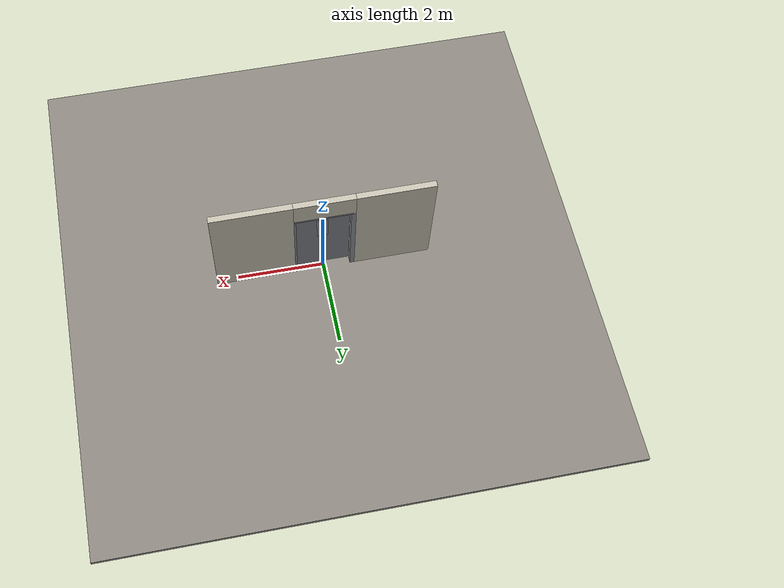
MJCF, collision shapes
<?xml version="1.0" ?>
<mujoco model="db0970_sliding_single_full">
  <compiler angle="radian" meshdir="../../hardware" texturedir="../../textures" autolimits="true" inertiafromgeom="false"/>
  <option timestep="0.002" integrator="implicitfast" cone="elliptic" impratio="10" noslip_iterations="3">
    <flag multiccd="enable"/>
  </option>
  <size memory="16M"/>
  <default>
    <geom condim="4" solref="0.005 1" solimp="0.95 0.99 0.001"/>
    <joint solreflimit="0.005 1" solimplimit="0.95 0.99 0.001"/>
    <tendon solreflimit="0.005 1"/>
    <equality solref="0.002 1"/>
  </default>
  <visual>
    <headlight ambient="0.4 0.4 0.4" diffuse="0.7 0.7 0.7" specular="0.2 0.2 0.2"/>
    <quality shadowsize="4096"/>
    <map znear="0.01" zfar="60"/>
  </visual>
  <asset>
    <mesh name="pull_1e5d69a91a" file="pull_1e5d69a91a.obj"/>
    <material name="mat_floor" rgba="0.55 0.53 0.5 1" specular="0.2" shininess="0.15" reflectance="0"/>
    <material name="mat_wall" rgba="0.78 0.76 0.7 1" specular="0.2" shininess="0.1" reflectance="0"/>
    <material name="mat_frame" rgba="0.55 0.56 0.58 1" specular="0.8" shininess="0.55" reflectance="0.4"/>
    <material name="mat_track" rgba="0.8 0.81 0.83 1" specular="0.8" shininess="0.6" reflectance="0.4"/>
    <material name="mat_leaf" rgba="0.5 0.51 0.53 1" specular="0.23" shininess="0.32" reflectance="0.02"/>
    <material name="mat_glass" rgba="0.85 0.92 0.95 0.25" specular="0.2" shininess="0.95" reflectance="0.1"/>
    <material name="mat_roller" rgba="0.65 0.66 0.68 1" specular="0.74" shininess="0.5" reflectance="0.36"/>
    <material name="mat_op_stainless" rgba="0.75 0.76 0.77 1" specular="0.8" shininess="0.65" reflectance="0.4"/>
    <material name="mat_hook" rgba="0.75 0.76 0.77 1" specular="0.8" shininess="0.65" reflectance="0.4"/>
    <material name="mat_placard" rgba="0.95 0.75 0.05 1" specular="0.2" shininess="0.5" reflectance="0"/>
    <texture name="skybox" type="skybox" builtin="gradient" rgb1="0.6 0.7 0.85" rgb2="0.9 0.92 0.95" width="256" height="256"/>
  </asset>
  <worldbody>
    <light name="sun" pos="1.5 -2.5 4" dir="-0.3 0.5 -0.8" directional="true" diffuse="0.8 0.8 0.8" specular="0.3 0.3 0.3" castshadow="true"/>
    <light name="fill" pos="-1.5 2.5 3" dir="0.3 -0.5 -0.7" directional="true" diffuse="0.35 0.35 0.4" castshadow="false"/>
    <camera name="robot_view" pos="0 -2.644375 1.817425" xyaxes="1 0 0 0 0.26963 0.962964" fovy="52"/>
    <camera name="far_view" pos="0 2.644375 1.817425" xyaxes="-1 0 0 0 -0.26963 0.962964" fovy="52"/>
    <camera name="iso" pos="2.009725 -2.221275 2.240525" xyaxes="0.741536 0.670913 0 -0.242917 0.268487 0.932151" fovy="46"/>
    <camera name="detail_handle" pos="-0.3395 -0.9965 1.28" xyaxes="0.97561 0.219512 0 -0.070934 0.315262 0.94635" fovy="38"/>
    <geom name="floor" type="box" size="6 6 0.05" pos="0 0 -0.05" material="mat_floor" group="0" contype="1" conaffinity="1" friction="0.8 0.005 0.0001" density="2400"/>
    <geom name="wall_left" type="box" size="0.88775 0.0725 1.377" pos="-1.61225 0 1.377" material="mat_wall" group="0" contype="1" conaffinity="1" friction="0.6 0.005 0.0001" density="800"/>
    <geom name="wall_right" type="box" size="0.91775 0.0725 1.377" pos="1.58225 0 1.377" material="mat_wall" group="0" contype="1" conaffinity="1" friction="0.6 0.005 0.0001" density="800"/>
    <geom name="wall_header" type="box" size="0.6945 0.0725 0.2775" pos="-0.03 0 2.4765" material="mat_wall" group="0" contype="1" conaffinity="1" friction="0.6 0.005 0.0001" density="800"/>
    <geom name="jamb_r" type="box" size="0.0225 0.0725 1.077" pos="0.642 0 1.077" material="mat_frame" group="0" contype="1" conaffinity="1" friction="0.6 0.005 0.0001" density="300"/>
    <geom name="jamb_head" type="box" size="0.6645 0.0725 0.0225" pos="0 0 2.1765" material="mat_frame" group="0" contype="1" conaffinity="1" friction="0.6 0.005 0.0001" density="300"/>
    <geom name="track_header" type="box" size="1.269 0.025 0.04" pos="0.6095 -0.1145 2.239" material="mat_track" group="0" contype="1" conaffinity="1" friction="0.6 0.005 0.0001" density="2700"/>
    <geom name="jamb_latch_0" type="box" size="0.0525 0.0725 1.077" pos="-0.672 0 1.077" material="mat_frame" group="0" contype="1" conaffinity="1" friction="0.6 0.005 0.0001" density="300"/>
    <geom name="track_header_bracket" type="box" size="1.0152 0.009 0.032" pos="0.6095 -0.081 2.239" material="mat_hook" group="1" contype="0" conaffinity="0" density="7850"/>
    <site name="approach_point" pos="0 -1.5 0" quat="1 0 0 0" size="0.05" rgba="0.2 0.9 0.2 0.5" group="4"/>
    <site name="goal_point" pos="0 1.5 0" quat="1 0 0 0" size="0.05" rgba="0.2 0.9 0.2 0.5" group="4"/>
    <site name="door_plane_center" pos="0 0 1.077" quat="1 0 0 0" size="0.02" rgba="0.2 0.9 0.2 0.5" group="4"/>
    <body name="leaf" pos="0 -0.1145 0">
      <inertial pos="-0.002208 -0.000323 1.087129" mass="110.675524" quat="0.499881 0.500491 -0.499484 0.500143" diaginertia="13.880754606 42.46994744 56.310116316"/>
      <joint name="leaf_slide" type="slide" axis="1 0 0" limited="true" range="0 1.219" damping="7.533776" frictionloss="65.121368" armature="0.5"/>
      <geom name="leaf_slab" type="box" size="0.6095 0.022 1.067" pos="0 0 1.079" material="mat_leaf" group="0" contype="1" conaffinity="1" friction="0.45 0.005 0.0001" density="1"/>
      <geom name="leaf_glass_0" type="box" size="0.125 0.0228 0.3201" pos="0 0 1.5058" material="mat_glass" group="1" contype="0" conaffinity="0" density="1"/>
      <geom name="leaf_carrier_0" type="box" size="0.02 0.005 0.0545" pos="-0.4895 0 2.1405" material="mat_roller" group="1" contype="0" conaffinity="0" density="7850"/>
      <geom name="leaf_carrier_wheel_0" type="cylinder" size="0.014 0.006" pos="-0.4895 0 2.185" quat="0.707107 -0.707107 0 0" material="mat_roller" group="1" contype="0" conaffinity="0" density="7850"/>
      <geom name="leaf_carrier_1" type="box" size="0.02 0.005 0.0545" pos="0.4895 0 2.1405" material="mat_roller" group="1" contype="0" conaffinity="0" density="7850"/>
      <geom name="leaf_carrier_wheel_1" type="cylinder" size="0.014 0.006" pos="0.4895 0 2.185" quat="0.707107 -0.707107 0 0" material="mat_roller" group="1" contype="0" conaffinity="0" density="7850"/>
      <geom name="leaf_pull_n" type="mesh" mesh="pull_1e5d69a91a" pos="-0.5195 -0.022 1" quat="0 0 -0.707107 0.707107" material="mat_op_stainless" group="1" contype="0" conaffinity="0" density="3000"/>
      <geom name="leaf_pull_col_n" type="capsule" size="0.0095 0.08" pos="-0.5195 -0.082 1" material="mat_op_stainless" group="3" contype="1" conaffinity="1" rgba="0.8 0.3 0.3 0.25" friction="0.7 0.01 0.0001" density="3000"/>
      <geom name="warning_placard" type="box" size="0.11 0.001 0.08" pos="0 -0.023 1.6125" material="mat_placard" group="2" contype="0" conaffinity="0" density="1000"/>
      <site name="leaf_pull_grip_n" pos="-0.5195 -0.082 1" quat="1 0 0 0" size="0.012" rgba="0.2 0.9 0.2 0.5" group="4"/>
      <site name="leaf_edge_mid" pos="-0.6095 0 1.079" quat="1 0 0 0" size="0.02" rgba="0.2 0.9 0.2 0.5" group="4"/>
    </body>
  </worldbody>
  <sensor>
    <jointpos name="leaf_slide_pos" joint="leaf_slide"/>
    <jointvel name="leaf_slide_vel" joint="leaf_slide"/>
  </sensor>
</mujoco>
